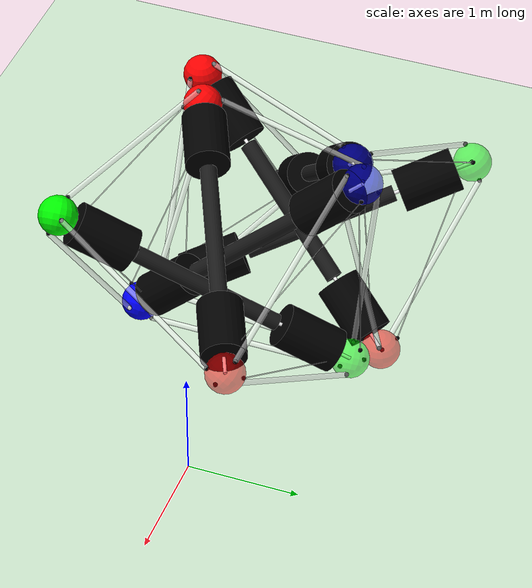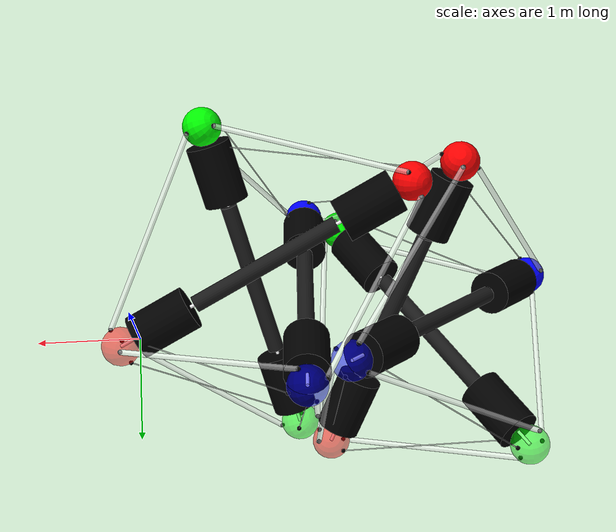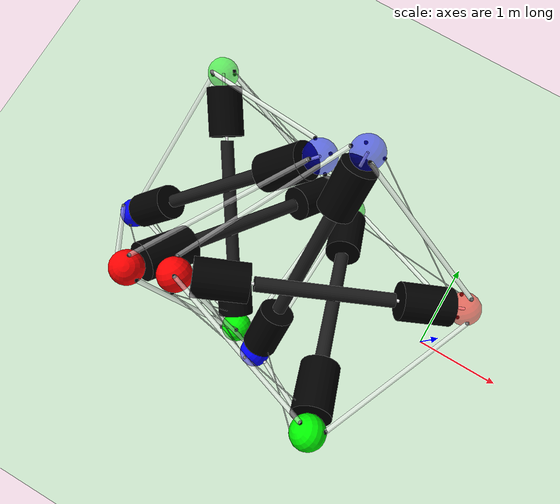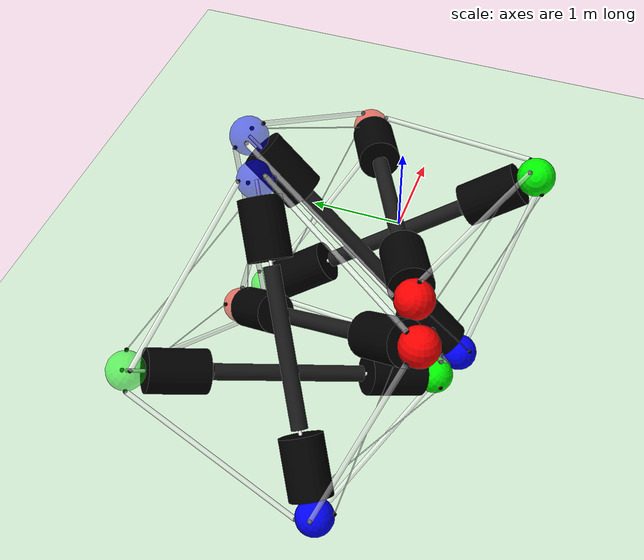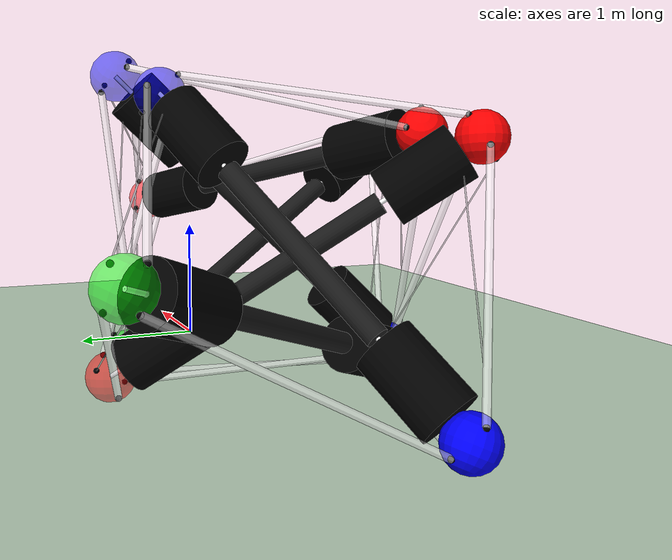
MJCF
<mujoco model="TT (v1.31)">
  <compiler angle="radian"/>

  <option timestep="0.01" cone="elliptic">
    <flag frictionloss="disable"/>
  </option>

  <visual>
    <global offwidth="1280" offheight="1280"/>
    <quality shadowsize="2048"/>
    <headlight ambient="0.4 0.4 0.4" diffuse="0.8 0.8 0.8" specular="0.1 0.1 0.1"/>
  </visual>

  <default>
    <geom size="0.014 0 0" condim="6" friction="1.2 0.0 0.0" solref="-5000 -50" rgba="0.75 0.75 0.75 1"/>
    <site size="0.02 0.005 0.005"/>

    <tendon stiffness="100000" damping="1000" springlength="1.5" width="0.005" rgba="1 1 1 0.5"/>
    <general ctrlrange="-100 0" dyntype="filter" gainprm="15000"/>
  </default>

  <asset>
    <texture type="skybox" colorspace="auto" name="skybox" builtin="gradient" mark="random" rgb1="0.4 0.6 0.8" rgb2="0 0 0" markrgb="1 1 1" width="800" height="4800"/>
    <texture type="2d" colorspace="auto" name="grid" builtin="checker" mark="edge" rgb1="0.1 0.2 0.3" rgb2="0.2 0.3 0.4" markrgb="0.2 0.3 0.4" width="300" height="300"/>
    <texture type="skybox" colorspace="auto" builtin="gradient" rgb1="1 1 1" rgb2="0 0 0" width="100" height="600"/>
    <texture type="cube" colorspace="auto" name="texgeom" builtin="flat" mark="cross" rgb1="0.8 0.6 0.4" rgb2="0.8 0.6 0.4" markrgb="1 1 1" width="127" height="762"/>
    <texture type="2d" colorspace="auto" name="texplane" builtin="checker" rgb1="0 0 0" rgb2="0.8 0.8 0.8" width="100" height="100"/>
    <material name="grid" texture="grid" texuniform="true"/>
    <material name="self" rgba="0.7 0.5 0.3 1"/>
    <material name="self_default" rgba="0.7 0.5 0.3 1"/>
    <material name="self_highlight" rgba="0 0.5 0.3 1"/>
    <material name="effector" rgba="0.7 0.4 0.2 1"/>
    <material name="effector_default" rgba="0.7 0.4 0.2 1"/>
    <material name="effector_highlight" rgba="0 0.5 0.3 1"/>
    <material name="decoration" rgba="0.3 0.5 0.7 1"/>
    <material name="eye" rgba="0 0.2 1 1"/>
    <material name="target" rgba="0.6 0.3 0.3 1"/>
    <material name="target_default" rgba="0.6 0.3 0.3 1"/>
    <material name="target_highlight" rgba="0.6 0.3 0.3 0.4"/>
    <material name="site" rgba="0.5 0.5 0.5 0.3"/>
    <material name="MatPlane" texture="texplane" texrepeat="30 30"/>
    <material name="geom" texture="texgeom" texuniform="true"/>
  </asset>

  <worldbody>
    <geom name="floor" size="40 40 1" type="plane" material="grid" rgba="0.8 0.9 0.8 1"/>
    <camera name="camera" pos="-1.707 -9.267 38.018" quat="0.992382 0.109445 -0.00620097 -0.0562269"/>
    <camera name="front" pos="10.257 -19.949 12.477" xyaxes="0.886 0.463 0.000 -0.225 0.430 0.875"/>
    <camera name="top" pos="0.392 -0.869 53.543" quat="0.999964 0.00849908 0 0"/>
    <light name="mylight" pos="0 0 6" dir="0 0 -1"/>
    <!-- World origin visual aids -->
    <site name="world_origin" pos="0 0 0" size="0.01" type="sphere" rgba="1 1 1 1"/>
    <geom name="x_axis" fromto="0 0 0 0.2 0 0" size="0.003" type="capsule" rgba="1 0 0 1" contype="0" conaffinity="0"/>
    <geom name="y_axis" fromto="0 0 0 0 0.2 0" size="0.003" type="capsule" rgba="0 1 0 1" contype="0" conaffinity="0"/>
    <geom name="z_axis" fromto="0 0 0 0 0 0.2" size="0.003" type="capsule" rgba="0 0 1 1" contype="0" conaffinity="0"/>
    <body name="t1_r01" pos="-1.26213974 -0.23564522  1.54703196" quat="0.76834435  0.33184372 -0.53958135 -0.09153509">
      <joint name="t1_move01" type="free"/>
      <geom name="t1_r01" size="0.0159 1.475" quat="1.02961e-09 -0.933251 0.359226 -9.46508e-10" type="cylinder" mass="6.5" rgba="1 1 1 1"/>
      <geom name="t1_s0" size="0.175" pos="3.69691e-09 1.83157e-09 -1.475" quat="0.815045 -0.454598 0.174983 0.313726" mass="15.1" rgba="1 0 0 0.5"/>
      <geom name="t1_s1" size="0.175" pos="-3.69691e-09 -1.83157e-09 1.475" quat="0.815045 -0.454598 0.174983 0.313726" mass="15.1" rgba="1 0 0 1"/>
      <geom name="t1_h01" size="0.075 0.715" quat="1.19879e-09 -0.933251 0.359226 3.09137e-09" type="cylinder" mass="90" rgba="0.1 0.1 0.1 1"/>
      <geom name="t1_b0" size="0.2 0.275" pos="-9.50917e-10 -1.3377e-09 -1.039" quat="2.96872e-09 -0.933251 0.359226 -2.79146e-09" type="cylinder" mass="58.1" rgba="0 0 0 1"/>
      <geom name="t1_b1" size="0.2 0.275" pos="9.50917e-10 1.3377e-09 1.039" quat="2.96872e-09 -0.933251 0.359226 -2.79146e-09" type="cylinder" mass="58.1" rgba="0 0 0 1"/>
      <site name="t1_s0" pos="3.69691e-09 1.83157e-09 -1.475" quat="0.815045 -0.454598 0.174983 0.313726" size="0.001" rgba="0 0 1 1"/>
      <site name="t1_s1" pos="-3.69691e-09 -1.83157e-09 1.475" quat="0.815045 -0.454598 0.174983 0.313726" size="0.001" rgba="0 0 1 1"/>
      <site name="t1_s_0_4" pos="0.0701671 0.160317 -1.475" quat="0.815045 -0.454598 0.174983 0.313726" rgba="0 0 0 1"/>
      <site name="t1_s_0_3" pos="0.160317 -0.0701671 -1.475" quat="0.815045 -0.454598 0.174983 0.313726" rgba="0 0 0 1"/>
      <site name="t1_s_0_2" pos="-0.0701671 -0.160317 -1.475" quat="0.815045 -0.454598 0.174983 0.313726" rgba="0 0 0 1"/>
      <site name="t1_s_0_b2" pos="-0.160317 0.0701671 -1.475" quat="0.815045 -0.454598 0.174983 0.313726" rgba="0 0 0 1"/>
      <site name="t1_s_b0_4" pos="0.0107106 0.174672 -1.25" quat="0.815045 -0.454598 0.174983 0.313726" rgba="0 0 0 1"/>
      <site name="t1_s_1_4" pos="-0.0783518 0.15648 1.475" quat="0.815045 -0.454598 0.174983 0.313726" rgba="0 0 0 1"/>
      <site name="t1_s_1_3" pos="0.15648 0.0783518 1.475" quat="0.815045 -0.454598 0.174983 0.313726" rgba="0 0 0 1"/>
      <site name="t1_s_1_b3" pos="0.0783518 -0.15648 1.475" quat="0.815045 -0.454598 0.174983 0.313726" rgba="0 0 0 1"/>
      <site name="t1_s_1_5" pos="-0.15648 -0.0783518 1.475" quat="0.815045 -0.454598 0.174983 0.313726" rgba="0 0 0 1"/>
      <site name="t1_s_b1_5" pos="-0.119125 -0.128196 1.25" quat="0.815045 -0.454598 0.174983 0.313726" rgba="0 0 0 1"/>
    </body>
    <body name="t1_r23" pos="-1.14161929 -0.26124791  1.02063315" quat="0.74468564  0.47369088 -0.1160248 0.45562978">
      <joint name="t1_move23" type="free"/>
      <geom name="t1_r23" size="0.0159 1.475" quat="-4.35483e-10 -0.967935 -0.251202 -5.83827e-10" type="cylinder" mass="6.5" rgba="1 1 1 1"/>
      <geom name="t1_s2" size="0.175" pos="1.98978e-09 -8.1084e-10 -1.475" quat="0.75122 -0.610382 -0.158409 -0.194959" mass="15.1" rgba="0 1 0 0.5"/>
      <geom name="t1_s3" size="0.175" pos="-1.98978e-09 8.1084e-10 1.475" quat="0.75122 -0.610382 -0.158409 -0.194959" mass="15.1" rgba="0 1 0 1"/>
      <geom name="t1_h23" size="0.075 0.715" quat="-1.43979e-09 -0.967935 -0.251202 2.94687e-09" type="cylinder" mass="90" rgba="0.1 0.1 0.1 1"/>
      <geom name="t1_b2" size="0.2 0.275" pos="-1.91631e-10 9.22312e-10 -1.039" quat="-2.39459e-09 -0.967935 -0.251202 -5.21693e-10" type="cylinder" mass="58.1" rgba="0 0 0 1"/>
      <geom name="t1_b3" size="0.2 0.275" pos="1.91631e-10 -9.22312e-10 1.039" quat="-2.39459e-09 -0.967935 -0.251202 -5.21693e-10" type="cylinder" mass="58.1" rgba="0 0 0 1"/>
      <site name="t1_s2" pos="1.98978e-09 -8.1084e-10 -1.475" quat="0.75122 -0.610382 -0.158409 -0.194959" size="0.001" rgba="0 1 0 1"/>
      <site name="t1_s3" pos="-1.98978e-09 8.1084e-10 1.475" quat="0.75122 -0.610382 -0.158409 -0.194959" size="0.001" rgba="0 1 0 1"/>
      <site name="t1_s_2_4" pos="-0.0850506 0.152942 -1.475" quat="0.75122 -0.610382 -0.158409 -0.194959" rgba="0 0 0 1"/>
      <site name="t1_s_2_b4" pos="0.152942 0.0850506 -1.475" quat="0.75122 -0.610382 -0.158409 -0.194959" rgba="0 0 0 1"/>
      <site name="t1_s_2_0" pos="0.0850506 -0.152942 -1.475" quat="0.75122 -0.610382 -0.158409 -0.194959" rgba="0 0 0 1"/>
      <site name="t1_s_b2_0" pos="0.123401 -0.124085 -1.25" quat="0.75122 -0.610382 -0.158409 -0.194959" rgba="0 0 0 1"/>
      <site name="t1_s_2_5" pos="-0.152942 -0.0850506 -1.475" quat="0.75122 -0.610382 -0.158409 -0.194959" rgba="0 0 0 1"/>
      <site name="t1_s_3_1" pos="0.0472796 0.168492 1.475" quat="0.75122 -0.610382 -0.158409 -0.194959" rgba="0 0 0 1"/>
      <site name="t1_s_b3_1" pos="-0.0343533 0.171595 1.25" quat="0.75122 -0.610382 -0.158409 -0.194959" rgba="0 0 0 1"/>
      <site name="t1_s_3_0" pos="0.168492 -0.0472796 1.475" quat="0.75122 -0.610382 -0.158409 -0.194959" rgba="0 0 0 1"/>
      <site name="t1_s_3_5" pos="-0.0472796 -0.168492 1.475" quat="0.75122 -0.610382 -0.158409 -0.194959" rgba="0 0 0 1"/>
      <site name="t1_s_3_b5" pos="-0.168492 0.0472796 1.475" quat="0.75122 -0.610382 -0.158409 -0.194959" rgba="0 0 0 1"/>
    </body>
    <body name="t1_r45" pos="-1.61019681 -0.05498509  1.20163103" quat="0.15651032  0.32311333 -0.86239838 0.35689119">
      <joint name="t1_move45" type="free"/>
      <geom name="t1_r45" size="0.0159 1.475" quat="1.95914e-11 -0.622854 0.782338 -9.94874e-10" type="cylinder" mass="6.5" rgba="1 1 1 1"/>
      <geom name="t1_s4" size="0.175" pos="1.87322e-09 -2.26007e-09 -1.475" quat="0.464921 -0.532774 0.669192 -0.228434" mass="15.1" rgba="0 0 1 0.5"/>
      <geom name="t1_s5" size="0.175" pos="-1.87322e-09 2.26007e-09 1.475" quat="0.464921 -0.532774 0.669192 -0.228434" mass="15.1" rgba="0 0 1 1"/>
      <geom name="t1_h45" size="0.075 0.715" quat="4.74452e-10 -0.622854 0.782338 -2.08275e-09" type="cylinder" mass="90" rgba="0.1 0.1 0.1 1"/>
      <geom name="t1_b4" size="0.2 0.275" pos="-1.03465e-09 1.12983e-09 -1.039" quat="-1.25256e-09 -0.622854 0.782338 5.36179e-09" type="cylinder" mass="58.1" rgba="0 0 0 1"/>
      <geom name="t1_b5" size="0.2 0.275" pos="1.03465e-09 -1.12983e-09 1.039" quat="-1.25256e-09 -0.622854 0.782338 5.36179e-09" type="cylinder" mass="58.1" rgba="0 0 0 1"/>
      <site name="t1_s4" pos="1.87322e-09 -2.26007e-09 -1.475" quat="0.464921 -0.532774 0.669192 -0.228434" size="0.001" rgba="1 0 0 1"/>
      <site name="t1_s5" pos="-1.87322e-09 2.26007e-09 1.475" quat="0.464921 -0.532774 0.669192 -0.228434" size="0.001" rgba="1 0 0 1"/>
      <site name="t1_s_4_1" pos="0.166088 0.0551331 -1.475" quat="0.464921 -0.532774 0.669192 -0.228434" rgba="0 0 0 1"/>
      <site name="t1_s_4_0" pos="0.0551331 -0.166088 -1.475" quat="0.464921 -0.532774 0.669192 -0.228434" rgba="0 0 0 1"/>
      <site name="t1_s_4_2" pos="-0.0551331 0.166088 -1.475" quat="0.464921 -0.532774 0.669192 -0.228434" rgba="0 0 0 1"/>
      <site name="t1_s_b4_2" pos="-0.0910059 0.149476 -1.25" quat="0.464921 -0.532774 0.669192 -0.228434" rgba="0 0 0 1"/>
      <site name="t1_s_4_b0" pos="-0.166088 -0.0551331 -1.475" quat="0.464921 -0.532774 0.669192 -0.228434" rgba="0 0 0 1"/>
      <site name="t1_s_5_1" pos="0.0855044 0.152689 1.475" quat="0.464921 -0.532774 0.669192 -0.228434" rgba="0 0 0 1"/>
      <site name="t1_s_5_b1" pos="0.152689 -0.0855044 1.475" quat="0.464921 -0.532774 0.669192 -0.228434" rgba="0 0 0 1"/>
      <site name="t1_s_5_3" pos="-0.0855044 -0.152689 1.475" quat="0.464921 -0.532774 0.669192 -0.228434" rgba="1 1 1 1"/>
      <site name="t1_s_b5_3" pos="-0.022702 -0.173521 1.25" quat="0.464921 -0.532774 0.669192 -0.228434" rgba="0 0 0 1"/>
      <site name="t1_s_5_2" pos="-0.152689 0.0855044 1.475" quat="0.464921 -0.532774 0.669192 -0.228434" rgba="0 0 0 1"/>
    </body>
    <body name="t2_r01" pos="-2.41028405  0.0558339   0.99225105" quat="0.83368351  0.46350748 -0.08384928 -0.28827403">
      <joint name="t2_move01" type="free"/>
      <geom name="t2_r01" size="0.0159 1.475" quat="1.02961e-09 -0.933251 0.359226 -9.46508e-10" type="cylinder" mass="6.5" rgba="1 1 1 1"/>
      <geom name="t2_s0" size="0.175" pos="3.69691e-09 1.83157e-09 -1.475" quat="0.815045 -0.454598 0.174983 0.313726" mass="15.1" rgba="1 0 0 0.5"/>
      <geom name="t2_s1" size="0.175" pos="-3.69691e-09 -1.83157e-09 1.475" quat="0.815045 -0.454598 0.174983 0.313726" mass="15.1" rgba="1 0 0 1"/>
      <geom name="t2_h01" size="0.075 0.715" quat="1.19879e-09 -0.933251 0.359226 3.09137e-09" type="cylinder" mass="90" rgba="0.1 0.1 0.1 1"/>
      <geom name="t2_b0" size="0.2 0.275" pos="-9.50917e-10 -1.3377e-09 -1.039" quat="2.96872e-09 -0.933251 0.359226 -2.79146e-09" type="cylinder" mass="58.1" rgba="0 0 0 1"/>
      <geom name="t2_b1" size="0.2 0.275" pos="9.50917e-10 1.3377e-09 1.039" quat="2.96872e-09 -0.933251 0.359226 -2.79146e-09" type="cylinder" mass="58.1" rgba="0 0 0 1"/>
      <site name="t2_s0" pos="3.69691e-09 1.83157e-09 -1.475" quat="0.815045 -0.454598 0.174983 0.313726" size="0.001" rgba="0 0 1 1"/>
      <site name="t2_s1" pos="-3.69691e-09 -1.83157e-09 1.475" quat="0.815045 -0.454598 0.174983 0.313726" size="0.001" rgba="0 0 1 1"/>
      <site name="t2_s_0_4" pos="0.0701671 0.160317 -1.475" quat="0.815045 -0.454598 0.174983 0.313726" rgba="0 0 0 1"/>
      <site name="t2_s_0_3" pos="0.160317 -0.0701671 -1.475" quat="0.815045 -0.454598 0.174983 0.313726" rgba="0 0 0 1"/>
      <site name="t2_s_0_2" pos="-0.0701671 -0.160317 -1.475" quat="0.815045 -0.454598 0.174983 0.313726" rgba="0 0 0 1"/>
      <site name="t2_s_0_b2" pos="-0.160317 0.0701671 -1.475" quat="0.815045 -0.454598 0.174983 0.313726" rgba="0 0 0 1"/>
      <site name="t2_s_b0_4" pos="0.0107106 0.174672 -1.25" quat="0.815045 -0.454598 0.174983 0.313726" rgba="0 0 0 1"/>
      <site name="t2_s_1_4" pos="-0.0783518 0.15648 1.475" quat="0.815045 -0.454598 0.174983 0.313726" rgba="0 0 0 1"/>
      <site name="t2_s_1_3" pos="0.15648 0.0783518 1.475" quat="0.815045 -0.454598 0.174983 0.313726" rgba="0 0 0 1"/>
      <site name="t2_s_1_b3" pos="0.0783518 -0.15648 1.475" quat="0.815045 -0.454598 0.174983 0.313726" rgba="0 0 0 1"/>
      <site name="t2_s_1_5" pos="-0.15648 -0.0783518 1.475" quat="0.815045 -0.454598 0.174983 0.313726" rgba="0 0 0 1"/>
      <site name="t2_s_b1_5" pos="-0.119125 -0.128196 1.25" quat="0.815045 -0.454598 0.174983 0.313726" rgba="0 0 0 1"/>
    </body>
    <body name="t2_r23" pos="-2.7633816   0.2147738   0.62967293" quat="0.54580568  0.79490038  0.14940125 0.21888084">
      <joint name="t2_move23" type="free"/>
      <geom name="t2_r23" size="0.0159 1.475" quat="-4.35483e-10 -0.967935 -0.251202 -5.83827e-10" type="cylinder" mass="6.5" rgba="1 1 1 1"/>
      <geom name="t2_s2" size="0.175" pos="1.98978e-09 -8.1084e-10 -1.475" quat="0.75122 -0.610382 -0.158409 -0.194959" mass="15.1" rgba="0 1 0 0.5"/>
      <geom name="t2_s3" size="0.175" pos="-1.98978e-09 8.1084e-10 1.475" quat="0.75122 -0.610382 -0.158409 -0.194959" mass="15.1" rgba="0 1 0 1"/>
      <geom name="t2_h23" size="0.075 0.715" quat="-1.43979e-09 -0.967935 -0.251202 2.94687e-09" type="cylinder" mass="90" rgba="0.1 0.1 0.1 1"/>
      <geom name="t2_b2" size="0.2 0.275" pos="-1.91631e-10 9.22312e-10 -1.039" quat="-2.39459e-09 -0.967935 -0.251202 -5.21693e-10" type="cylinder" mass="58.1" rgba="0 0 0 1"/>
      <geom name="t2_b3" size="0.2 0.275" pos="1.91631e-10 -9.22312e-10 1.039" quat="-2.39459e-09 -0.967935 -0.251202 -5.21693e-10" type="cylinder" mass="58.1" rgba="0 0 0 1"/>
      <site name="t2_s2" pos="1.98978e-09 -8.1084e-10 -1.475" quat="0.75122 -0.610382 -0.158409 -0.194959" size="0.001" rgba="0 1 0 1"/>
      <site name="t2_s3" pos="-1.98978e-09 8.1084e-10 1.475" quat="0.75122 -0.610382 -0.158409 -0.194959" size="0.001" rgba="0 1 0 1"/>
      <site name="t2_s_2_4" pos="-0.0850506 0.152942 -1.475" quat="0.75122 -0.610382 -0.158409 -0.194959" rgba="0 0 0 1"/>
      <site name="t2_s_2_b4" pos="0.152942 0.0850506 -1.475" quat="0.75122 -0.610382 -0.158409 -0.194959" rgba="0 0 0 1"/>
      <site name="t2_s_2_0" pos="0.0850506 -0.152942 -1.475" quat="0.75122 -0.610382 -0.158409 -0.194959" rgba="0 0 0 1"/>
      <site name="t2_s_b2_0" pos="0.123401 -0.124085 -1.25" quat="0.75122 -0.610382 -0.158409 -0.194959" rgba="0 0 0 1"/>
      <site name="t2_s_2_5" pos="-0.152942 -0.0850506 -1.475" quat="0.75122 -0.610382 -0.158409 -0.194959" rgba="0 0 0 1"/>
      <site name="t2_s_3_1" pos="0.0472796 0.168492 1.475" quat="0.75122 -0.610382 -0.158409 -0.194959" rgba="0 0 0 1"/>
      <site name="t2_s_b3_1" pos="-0.0343533 0.171595 1.25" quat="0.75122 -0.610382 -0.158409 -0.194959" rgba="0 0 0 1"/>
      <site name="t2_s_3_0" pos="0.168492 -0.0472796 1.475" quat="0.75122 -0.610382 -0.158409 -0.194959" rgba="0 0 0 1"/>
      <site name="t2_s_3_5" pos="-0.0472796 -0.168492 1.475" quat="0.75122 -0.610382 -0.158409 -0.194959" rgba="0 0 0 1"/>
      <site name="t2_s_3_b5" pos="-0.168492 0.0472796 1.475" quat="0.75122 -0.610382 -0.158409 -0.194959" rgba="0 0 0 1"/>
    </body>
    <body name="t2_r45" pos="-2.87473964  0.18788194  1.13645211" quat="0.41615165  0.53221606 -0.73683846 -0.02515885">
      <joint name="t2_move45" type="free"/>
      <geom name="t2_r45" size="0.0159 1.475" quat="1.95914e-11 -0.622854 0.782338 -9.94874e-10" type="cylinder" mass="6.5" rgba="1 1 1 1"/>
      <geom name="t2_s4" size="0.175" pos="1.87322e-09 -2.26007e-09 -1.475" quat="0.464921 -0.532774 0.669192 -0.228434" mass="15.1" rgba="0 0 1 0.5"/>
      <geom name="t2_s5" size="0.175" pos="-1.87322e-09 2.26007e-09 1.475" quat="0.464921 -0.532774 0.669192 -0.228434" mass="15.1" rgba="0 0 1 1"/>
      <geom name="t2_h45" size="0.075 0.715" quat="4.74452e-10 -0.622854 0.782338 -2.08275e-09" type="cylinder" mass="90" rgba="0.1 0.1 0.1 1"/>
      <geom name="t2_b4" size="0.2 0.275" pos="-1.03465e-09 1.12983e-09 -1.039" quat="-1.25256e-09 -0.622854 0.782338 5.36179e-09" type="cylinder" mass="58.1" rgba="0 0 0 1"/>
      <geom name="t2_b5" size="0.2 0.275" pos="1.03465e-09 -1.12983e-09 1.039" quat="-1.25256e-09 -0.622854 0.782338 5.36179e-09" type="cylinder" mass="58.1" rgba="0 0 0 1"/>
      <site name="t2_s4" pos="1.87322e-09 -2.26007e-09 -1.475" quat="0.464921 -0.532774 0.669192 -0.228434" size="0.001" rgba="1 0 0 1"/>
      <site name="t2_s5" pos="-1.87322e-09 2.26007e-09 1.475" quat="0.464921 -0.532774 0.669192 -0.228434" size="0.001" rgba="1 0 0 1"/>
      <site name="t2_s_4_1" pos="0.166088 0.0551331 -1.475" quat="0.464921 -0.532774 0.669192 -0.228434" rgba="0 0 0 1"/>
      <site name="t2_s_4_0" pos="0.0551331 -0.166088 -1.475" quat="0.464921 -0.532774 0.669192 -0.228434" rgba="0 0 0 1"/>
      <site name="t2_s_4_2" pos="-0.0551331 0.166088 -1.475" quat="0.464921 -0.532774 0.669192 -0.228434" rgba="0 0 0 1"/>
      <site name="t2_s_b4_2" pos="-0.0910059 0.149476 -1.25" quat="0.464921 -0.532774 0.669192 -0.228434" rgba="0 0 0 1"/>
      <site name="t2_s_4_b0" pos="-0.166088 -0.0551331 -1.475" quat="0.464921 -0.532774 0.669192 -0.228434" rgba="0 0 0 1"/>
      <site name="t2_s_5_1" pos="0.0855044 0.152689 1.475" quat="0.464921 -0.532774 0.669192 -0.228434" rgba="0 0 0 1"/>
      <site name="t2_s_5_b1" pos="0.152689 -0.0855044 1.475" quat="0.464921 -0.532774 0.669192 -0.228434" rgba="0 0 0 1"/>
      <site name="t2_s_5_3" pos="-0.0855044 -0.152689 1.475" quat="0.464921 -0.532774 0.669192 -0.228434" rgba="1 1 1 1"/>
      <site name="t2_s_b5_3" pos="-0.022702 -0.173521 1.25" quat="0.464921 -0.532774 0.669192 -0.228434" rgba="0 0 0 1"/>
      <site name="t2_s_5_2" pos="-0.152689 0.0855044 1.475" quat="0.464921 -0.532774 0.669192 -0.228434" rgba="0 0 0 1"/>
    </body>
  </worldbody>

  <tendon>
    <spatial name="t1_td_0" rgba="0.6 0.6 0.6 0.5">
      <site site="t1_s_3_b5"/>
      <site site="t1_s_b5_3"/>
    </spatial>
    <spatial name="t1_td_1" rgba="0.6 0.6 0.6 0.5">
      <site site="t1_s_1_b3"/>
      <site site="t1_s_b3_1"/>
    </spatial>
    <spatial name="t1_td_2" rgba="0.6 0.6 0.6 0.5">
      <site site="t1_s_5_b1"/>
      <site site="t1_s_b1_5"/>
    </spatial>
    <spatial name="t1_td_3" rgba="0.6 0.6 0.6 0.5">
      <site site="t1_s_0_b2"/>
      <site site="t1_s_b2_0"/>
    </spatial>
    <spatial name="t1_td_4" rgba="0.6 0.6 0.6 0.5">
      <site site="t1_s_4_b0"/>
      <site site="t1_s_b0_4"/>
    </spatial>
    <spatial name="t1_td_5" rgba="0.6 0.6 0.6 0.5">
      <site site="t1_s_2_b4"/>
      <site site="t1_s_b4_2"/>
    </spatial>
    <spatial name="t1_td_6" stiffness="1000" springlength="0.65" width="0.025">
      <site site="t1_s_3_5"/>
      <site site="t1_s_5_3"/>
    </spatial>
    <spatial name="t1_td_7" stiffness="1000" springlength="0.65" width="0.025">
      <site site="t1_s_1_3"/>
      <site site="t1_s_3_1"/>
    </spatial>
    <spatial name="t1_td_8" stiffness="1000" springlength="0.65" width="0.025">
      <site site="t1_s_1_5"/>
      <site site="t1_s_5_1"/>
    </spatial>
    <spatial name="t1_td_9" stiffness="1000" springlength="0.65" width="0.025">
      <site site="t1_s_0_2"/>
      <site site="t1_s_2_0"/>
    </spatial>
    <spatial name="t1_td_10" stiffness="1000" springlength="0.65" width="0.025">
      <site site="t1_s_0_4"/>
      <site site="t1_s_4_0"/>
    </spatial>
    <spatial name="t1_td_11" stiffness="1000" springlength="0.65" width="0.025">
      <site site="t1_s_2_4"/>
      <site site="t1_s_4_2"/>
    </spatial>
    <spatial name="t1_td_12" stiffness="20000" springlength="1.3" width="0.025">
      <site site="t1_s_2_5"/>
      <site site="t1_s_5_2"/>
    </spatial>
    <spatial name="t1_td_13" stiffness="20000" springlength="1.3" width="0.025">
      <site site="t1_s_0_3"/>
      <site site="t1_s_3_0"/>
    </spatial>
    <spatial name="t1_td_14" stiffness="20000" springlength="1.3" width="0.025">
      <site site="t1_s_1_4"/>
      <site site="t1_s_4_1"/>
    </spatial>
    <spatial name="t2_td_0" rgba="0.6 0.6 0.6 0.5">
      <site site="t2_s_3_b5"/>
      <site site="t2_s_b5_3"/>
    </spatial>
    <spatial name="t2_td_1" rgba="0.6 0.6 0.6 0.5">
      <site site="t2_s_1_b3"/>
      <site site="t2_s_b3_1"/>
    </spatial>
    <spatial name="t2_td_2" rgba="0.6 0.6 0.6 0.5">
      <site site="t2_s_5_b1"/>
      <site site="t2_s_b1_5"/>
    </spatial>
    <spatial name="t2_td_3" rgba="0.6 0.6 0.6 0.5">
      <site site="t2_s_0_b2"/>
      <site site="t2_s_b2_0"/>
    </spatial>
    <spatial name="t2_td_4" rgba="0.6 0.6 0.6 0.5">
      <site site="t2_s_4_b0"/>
      <site site="t2_s_b0_4"/>
    </spatial>
    <spatial name="t2_td_5" rgba="0.6 0.6 0.6 0.5">
      <site site="t2_s_2_b4"/>
      <site site="t2_s_b4_2"/>
    </spatial>
    <spatial name="t2_td_6" stiffness="1000" springlength="0.65" width="0.025">
      <site site="t2_s_3_5"/>
      <site site="t2_s_5_3"/>
    </spatial>
    <spatial name="t2_td_7" stiffness="1000" springlength="0.65" width="0.025">
      <site site="t2_s_1_3"/>
      <site site="t2_s_3_1"/>
    </spatial>
    <spatial name="t2_td_8" stiffness="1000" springlength="0.65" width="0.025">
      <site site="t2_s_1_5"/>
      <site site="t2_s_5_1"/>
    </spatial>
    <spatial name="t2_td_9" stiffness="1000" springlength="0.65" width="0.025">
      <site site="t2_s_0_2"/>
      <site site="t2_s_2_0"/>
    </spatial>
    <spatial name="t2_td_10" stiffness="1000" springlength="0.65" width="0.025">
      <site site="t2_s_0_4"/>
      <site site="t2_s_4_0"/>
    </spatial>
    <spatial name="t2_td_11" stiffness="1000" springlength="0.65" width="0.025">
      <site site="t2_s_2_4"/>
      <site site="t2_s_4_2"/>
    </spatial>
    <spatial name="t2_td_12" stiffness="20000" springlength="1.3" width="0.025">
      <site site="t2_s_2_5"/>
      <site site="t2_s_5_2"/>
    </spatial>
    <spatial name="t2_td_13" stiffness="20000" springlength="1.3" width="0.025">
      <site site="t2_s_0_3"/>
      <site site="t2_s_3_0"/>
    </spatial>
    <spatial name="t2_td_14" stiffness="20000" springlength="1.3" width="0.025">
      <site site="t2_s_1_4"/>
      <site site="t2_s_4_1"/>
    </spatial>

<!--    Used to quickly find potential attachment points-->
  </tendon>

  <equality>
    <weld body1="t1_r23" body2="t2_r01" anchor="0 0 0"/>
    <weld body1="t1_r01" body2="t2_r01" anchor="0 0 0"/>
    <weld body1="t1_r45" body2="t2_r23" anchor="0 0 0"/>
    <weld body1="t1_r45" body2="t2_r45" anchor="0 0 0"/>
  </equality>

  <sensor>
    <framepos objtype="site" objname="t1_s0" name="pos_t1_s0"/>
    <framepos objtype="site" objname="t1_s1" name="pos_t1_s1"/>
    <framepos objtype="site" objname="t1_s2" name="pos_t1_s2"/>
    <framepos objtype="site" objname="t1_s3" name="pos_t1_s3"/>
    <framepos objtype="site" objname="t1_s4" name="pos_t1_s4"/>
    <framepos objtype="site" objname="t1_s5" name="pos_t1_s5"/>
    <framepos objtype="site" objname="t1_s_0_4" name="pos_t1_s_0_4"/>
    <framepos objtype="site" objname="t1_s_0_3" name="pos_t1_s_0_3"/>
    <framepos objtype="site" objname="t1_s_0_2" name="pos_t1_s_0_2"/>
    <framepos objtype="site" objname="t1_s_b0_4" name="pos_t1_s_b0_4"/>
    <framepos objtype="site" objname="t1_s_0_b2" name="pos_t1_s_0_b2"/>
    <framepos objtype="site" objname="t1_s_1_4" name="pos_t1_s_1_4"/>
    <framepos objtype="site" objname="t1_s_1_3" name="pos_t1_s_1_3"/>
    <framepos objtype="site" objname="t1_s_1_5" name="pos_t1_s_1_5"/>
    <framepos objtype="site" objname="t1_s_1_b3" name="pos_t1_s_1_b3"/>
    <framepos objtype="site" objname="t1_s_b1_5" name="pos_t1_s_b1_5"/>
    <framepos objtype="site" objname="t1_s_2_4" name="pos_t1_s_2_4"/>
    <framepos objtype="site" objname="t1_s_2_0" name="pos_t1_s_2_0"/>
    <framepos objtype="site" objname="t1_s_2_5" name="pos_t1_s_2_5"/>
    <framepos objtype="site" objname="t1_s_b2_0" name="pos_t1_s_b2_0"/>
    <framepos objtype="site" objname="t1_s_2_b4" name="pos_t1_s_2_b4"/>
    <framepos objtype="site" objname="t1_s_3_1" name="pos_t1_s_3_1"/>
    <framepos objtype="site" objname="t1_s_3_0" name="pos_t1_s_3_0"/>
    <framepos objtype="site" objname="t1_s_3_5" name="pos_t1_s_3_5"/>
    <framepos objtype="site" objname="t1_s_3_b5" name="pos_t1_s_3_b5"/>
    <framepos objtype="site" objname="t1_s_b3_1" name="pos_t1_s_b3_1"/>
    <framepos objtype="site" objname="t1_s_4_1" name="pos_t1_s_4_1"/>
    <framepos objtype="site" objname="t1_s_4_0" name="pos_t1_s_4_0"/>
    <framepos objtype="site" objname="t1_s_4_2" name="pos_t1_s_4_2"/>
    <framepos objtype="site" objname="t1_s_4_b0" name="pos_t1_s_4_b0"/>
    <framepos objtype="site" objname="t1_s_b4_2" name="pos_t1_s_b4_2"/>
    <framepos objtype="site" objname="t1_s_5_1" name="pos_t1_s_5_1"/>
    <framepos objtype="site" objname="t1_s_5_3" name="pos_t1_s_5_3"/>
    <framepos objtype="site" objname="t1_s_5_2" name="pos_t1_s_5_2"/>
    <framepos objtype="site" objname="t1_s_5_b1" name="pos_t1_s_5_b1"/>
    <framepos objtype="site" objname="t1_s_b5_3" name="pos_t1_s_b5_3"/>
    <framelinvel objtype="site" objname="t1_s0" name="linvel_t1_s0"/>
    <framelinvel objtype="site" objname="t1_s1" name="linvel_t1_s1"/>
    <framelinvel objtype="site" objname="t1_s2" name="linvel_t1_s2"/>
    <framelinvel objtype="site" objname="t1_s3" name="linvel_t1_s3"/>
    <framelinvel objtype="site" objname="t1_s4" name="linvel_t1_s4"/>
    <framelinvel objtype="site" objname="t1_s5" name="linvel_t1_s5"/>
    <framelinvel objtype="site" objname="t1_s_0_4" name="linvel_t1_s_0_4"/>
    <framelinvel objtype="site" objname="t1_s_0_3" name="linvel_t1_s_0_3"/>
    <framelinvel objtype="site" objname="t1_s_0_2" name="linvel_t1_s_0_2"/>
    <framelinvel objtype="site" objname="t1_s_1_4" name="linvel_t1_s_1_4"/>
    <framelinvel objtype="site" objname="t1_s_1_3" name="linvel_t1_s_1_3"/>
    <framelinvel objtype="site" objname="t1_s_1_5" name="linvel_t1_s_1_5"/>
    <framelinvel objtype="site" objname="t1_s_2_4" name="linvel_t1_s_2_4"/>
    <framelinvel objtype="site" objname="t1_s_2_0" name="linvel_t1_s_2_0"/>
    <framelinvel objtype="site" objname="t1_s_2_5" name="linvel_t1_s_2_5"/>
    <framelinvel objtype="site" objname="t1_s_3_1" name="linvel_t1_s_3_1"/>
    <framelinvel objtype="site" objname="t1_s_3_0" name="linvel_t1_s_3_0"/>
    <framelinvel objtype="site" objname="t1_s_3_5" name="linvel_t1_s_3_5"/>
    <framelinvel objtype="site" objname="t1_s_4_1" name="linvel_t1_s_4_1"/>
    <framelinvel objtype="site" objname="t1_s_4_0" name="linvel_t1_s_4_0"/>
    <framelinvel objtype="site" objname="t1_s_4_2" name="linvel_t1_s_4_2"/>
    <framelinvel objtype="site" objname="t1_s_5_1" name="linvel_t1_s_5_1"/>
    <framelinvel objtype="site" objname="t1_s_5_3" name="linvel_t1_s_5_3"/>
    <framelinvel objtype="site" objname="t1_s_5_2" name="linvel_t1_s_5_2"/>
    <framelinacc objtype="site" objname="t1_s0" name="linacc_t1_s0"/>
    <framelinacc objtype="site" objname="t1_s1" name="linacc_t1_s1"/>
    <framelinacc objtype="site" objname="t1_s2" name="linacc_t1_s2"/>
    <framelinacc objtype="site" objname="t1_s3" name="linacc_t1_s3"/>
    <framelinacc objtype="site" objname="t1_s4" name="linacc_t1_s4"/>
    <framelinacc objtype="site" objname="t1_s5" name="linacc_t1_s5"/>
    <framelinacc objtype="site" objname="t1_s_0_4" name="linacc_t1_s_0_4"/>
    <framelinacc objtype="site" objname="t1_s_0_3" name="linacc_t1_s_0_3"/>
    <framelinacc objtype="site" objname="t1_s_0_2" name="linacc_t1_s_0_2"/>
    <framelinacc objtype="site" objname="t1_s_1_4" name="linacc_t1_s_1_4"/>
    <framelinacc objtype="site" objname="t1_s_1_3" name="linacc_t1_s_1_3"/>
    <framelinacc objtype="site" objname="t1_s_1_5" name="linacc_t1_s_1_5"/>
    <framelinacc objtype="site" objname="t1_s_2_4" name="linacc_t1_s_2_4"/>
    <framelinacc objtype="site" objname="t1_s_2_0" name="linacc_t1_s_2_0"/>
    <framelinacc objtype="site" objname="t1_s_2_5" name="linacc_t1_s_2_5"/>
    <framelinacc objtype="site" objname="t1_s_3_1" name="linacc_t1_s_3_1"/>
    <framelinacc objtype="site" objname="t1_s_3_0" name="linacc_t1_s_3_0"/>
    <framelinacc objtype="site" objname="t1_s_3_5" name="linacc_t1_s_3_5"/>
    <framelinacc objtype="site" objname="t1_s_4_1" name="linacc_t1_s_4_1"/>
    <framelinacc objtype="site" objname="t1_s_4_0" name="linacc_t1_s_4_0"/>
    <framelinacc objtype="site" objname="t1_s_4_2" name="linacc_t1_s_4_2"/>
    <framelinacc objtype="site" objname="t1_s_5_1" name="linacc_t1_s_5_1"/>
    <framelinacc objtype="site" objname="t1_s_5_3" name="linacc_t1_s_5_3"/>
    <framelinacc objtype="site" objname="t1_s_5_2" name="linacc_t1_s_5_2"/>
    <framelinacc objtype="geom" objname="t1_r01" name="linacc_t1_r01"/>
    <frameangacc objtype="geom" objname="t1_r01" name="angacc_t1_r01"/>
    <framepos objtype="geom" objname="t1_r01" name="pos_t1_r01"/>
    <framelinvel objtype="geom" objname="t1_r01" name="linvel_t1_r01"/>
    <frameangvel objtype="geom" objname="t1_r01" name="angvel_t1_r01"/>
    <framequat objtype="geom" objname="t1_r01" name="quat_t1_r01"/>
    <framelinacc objtype="geom" objname="t1_r23" name="linacc_t1_r23"/>
    <frameangacc objtype="geom" objname="t1_r23" name="angacc_t1_r23"/>
    <framepos objtype="geom" objname="t1_r23" name="pos_t1_r23"/>
    <framelinvel objtype="geom" objname="t1_r23" name="linvel_t1_r23"/>
    <frameangvel objtype="geom" objname="t1_r23" name="angvel_t1_r23"/>
    <framequat objtype="geom" objname="t1_r23" name="quat_t1_r23"/>
    <framelinacc objtype="geom" objname="t1_r45" name="linacc_t1_r45"/>
    <frameangacc objtype="geom" objname="t1_r45" name="angacc_t1_r45"/>
    <framepos objtype="geom" objname="t1_r45" name="pos_t1_r45"/>
    <framelinvel objtype="geom" objname="t1_r45" name="linvel_t1_r45"/>
    <frameangvel objtype="geom" objname="t1_r45" name="angvel_t1_r45"/>
    <framequat objtype="geom" objname="t1_r45" name="quat_t1_r45"/>
    <framepos objtype="site" objname="t2_s0" name="pos_t2_s0"/>
    <framepos objtype="site" objname="t2_s1" name="pos_t2_s1"/>
    <framepos objtype="site" objname="t2_s2" name="pos_t2_s2"/>
    <framepos objtype="site" objname="t2_s3" name="pos_t2_s3"/>
    <framepos objtype="site" objname="t2_s4" name="pos_t2_s4"/>
    <framepos objtype="site" objname="t2_s5" name="pos_t2_s5"/>
    <framepos objtype="site" objname="t2_s_0_4" name="pos_t2_s_0_4"/>
    <framepos objtype="site" objname="t2_s_0_3" name="pos_t2_s_0_3"/>
    <framepos objtype="site" objname="t2_s_0_2" name="pos_t2_s_0_2"/>
    <framepos objtype="site" objname="t2_s_b0_4" name="pos_t2_s_b0_4"/>
    <framepos objtype="site" objname="t2_s_0_b2" name="pos_t2_s_0_b2"/>
    <framepos objtype="site" objname="t2_s_1_4" name="pos_t2_s_1_4"/>
    <framepos objtype="site" objname="t2_s_1_3" name="pos_t2_s_1_3"/>
    <framepos objtype="site" objname="t2_s_1_5" name="pos_t2_s_1_5"/>
    <framepos objtype="site" objname="t2_s_1_b3" name="pos_t2_s_1_b3"/>
    <framepos objtype="site" objname="t2_s_b1_5" name="pos_t2_s_b1_5"/>
    <framepos objtype="site" objname="t2_s_2_4" name="pos_t2_s_2_4"/>
    <framepos objtype="site" objname="t2_s_2_0" name="pos_t2_s_2_0"/>
    <framepos objtype="site" objname="t2_s_2_5" name="pos_t2_s_2_5"/>
    <framepos objtype="site" objname="t2_s_b2_0" name="pos_t2_s_b2_0"/>
    <framepos objtype="site" objname="t2_s_2_b4" name="pos_t2_s_2_b4"/>
    <framepos objtype="site" objname="t2_s_3_1" name="pos_t2_s_3_1"/>
    <framepos objtype="site" objname="t2_s_3_0" name="pos_t2_s_3_0"/>
    <framepos objtype="site" objname="t2_s_3_5" name="pos_t2_s_3_5"/>
    <framepos objtype="site" objname="t2_s_3_b5" name="pos_t2_s_3_b5"/>
    <framepos objtype="site" objname="t2_s_b3_1" name="pos_t2_s_b3_1"/>
    <framepos objtype="site" objname="t2_s_4_1" name="pos_t2_s_4_1"/>
    <framepos objtype="site" objname="t2_s_4_0" name="pos_t2_s_4_0"/>
    <framepos objtype="site" objname="t2_s_4_2" name="pos_t2_s_4_2"/>
    <framepos objtype="site" objname="t2_s_4_b0" name="pos_t2_s_4_b0"/>
    <framepos objtype="site" objname="t2_s_b4_2" name="pos_t2_s_b4_2"/>
    <framepos objtype="site" objname="t2_s_5_1" name="pos_t2_s_5_1"/>
    <framepos objtype="site" objname="t2_s_5_3" name="pos_t2_s_5_3"/>
    <framepos objtype="site" objname="t2_s_5_2" name="pos_t2_s_5_2"/>
    <framepos objtype="site" objname="t2_s_5_b1" name="pos_t2_s_5_b1"/>
    <framepos objtype="site" objname="t2_s_b5_3" name="pos_t2_s_b5_3"/>
    <framelinvel objtype="site" objname="t2_s0" name="linvel_t2_s0"/>
    <framelinvel objtype="site" objname="t2_s1" name="linvel_t2_s1"/>
    <framelinvel objtype="site" objname="t2_s2" name="linvel_t2_s2"/>
    <framelinvel objtype="site" objname="t2_s3" name="linvel_t2_s3"/>
    <framelinvel objtype="site" objname="t2_s4" name="linvel_t2_s4"/>
    <framelinvel objtype="site" objname="t2_s5" name="linvel_t2_s5"/>
    <framelinvel objtype="site" objname="t2_s_0_4" name="linvel_t2_s_0_4"/>
    <framelinvel objtype="site" objname="t2_s_0_3" name="linvel_t2_s_0_3"/>
    <framelinvel objtype="site" objname="t2_s_0_2" name="linvel_t2_s_0_2"/>
    <framelinvel objtype="site" objname="t2_s_1_4" name="linvel_t2_s_1_4"/>
    <framelinvel objtype="site" objname="t2_s_1_3" name="linvel_t2_s_1_3"/>
    <framelinvel objtype="site" objname="t2_s_1_5" name="linvel_t2_s_1_5"/>
    <framelinvel objtype="site" objname="t2_s_2_4" name="linvel_t2_s_2_4"/>
    <framelinvel objtype="site" objname="t2_s_2_0" name="linvel_t2_s_2_0"/>
    <framelinvel objtype="site" objname="t2_s_2_5" name="linvel_t2_s_2_5"/>
    <framelinvel objtype="site" objname="t2_s_3_1" name="linvel_t2_s_3_1"/>
    <framelinvel objtype="site" objname="t2_s_3_0" name="linvel_t2_s_3_0"/>
    <framelinvel objtype="site" objname="t2_s_3_5" name="linvel_t2_s_3_5"/>
    <framelinvel objtype="site" objname="t2_s_4_1" name="linvel_t2_s_4_1"/>
    <framelinvel objtype="site" objname="t2_s_4_0" name="linvel_t2_s_4_0"/>
    <framelinvel objtype="site" objname="t2_s_4_2" name="linvel_t2_s_4_2"/>
    <framelinvel objtype="site" objname="t2_s_5_1" name="linvel_t2_s_5_1"/>
    <framelinvel objtype="site" objname="t2_s_5_3" name="linvel_t2_s_5_3"/>
    <framelinvel objtype="site" objname="t2_s_5_2" name="linvel_t2_s_5_2"/>
    <framelinacc objtype="site" objname="t2_s0" name="linacc_t2_s0"/>
    <framelinacc objtype="site" objname="t2_s1" name="linacc_t2_s1"/>
    <framelinacc objtype="site" objname="t2_s2" name="linacc_t2_s2"/>
    <framelinacc objtype="site" objname="t2_s3" name="linacc_t2_s3"/>
    <framelinacc objtype="site" objname="t2_s4" name="linacc_t2_s4"/>
    <framelinacc objtype="site" objname="t2_s5" name="linacc_t2_s5"/>
    <framelinacc objtype="site" objname="t2_s_0_4" name="linacc_t2_s_0_4"/>
    <framelinacc objtype="site" objname="t2_s_0_3" name="linacc_t2_s_0_3"/>
    <framelinacc objtype="site" objname="t2_s_0_2" name="linacc_t2_s_0_2"/>
    <framelinacc objtype="site" objname="t2_s_1_4" name="linacc_t2_s_1_4"/>
    <framelinacc objtype="site" objname="t2_s_1_3" name="linacc_t2_s_1_3"/>
    <framelinacc objtype="site" objname="t2_s_1_5" name="linacc_t2_s_1_5"/>
    <framelinacc objtype="site" objname="t2_s_2_4" name="linacc_t2_s_2_4"/>
    <framelinacc objtype="site" objname="t2_s_2_0" name="linacc_t2_s_2_0"/>
    <framelinacc objtype="site" objname="t2_s_2_5" name="linacc_t2_s_2_5"/>
    <framelinacc objtype="site" objname="t2_s_3_1" name="linacc_t2_s_3_1"/>
    <framelinacc objtype="site" objname="t2_s_3_0" name="linacc_t2_s_3_0"/>
    <framelinacc objtype="site" objname="t2_s_3_5" name="linacc_t2_s_3_5"/>
    <framelinacc objtype="site" objname="t2_s_4_1" name="linacc_t2_s_4_1"/>
    <framelinacc objtype="site" objname="t2_s_4_0" name="linacc_t2_s_4_0"/>
    <framelinacc objtype="site" objname="t2_s_4_2" name="linacc_t2_s_4_2"/>
    <framelinacc objtype="site" objname="t2_s_5_1" name="linacc_t2_s_5_1"/>
    <framelinacc objtype="site" objname="t2_s_5_3" name="linacc_t2_s_5_3"/>
    <framelinacc objtype="site" objname="t2_s_5_2" name="linacc_t2_s_5_2"/>
    <framelinacc objtype="geom" objname="t2_r01" name="linacc_t2_r01"/>
    <frameangacc objtype="geom" objname="t2_r01" name="angacc_t2_r01"/>
    <framepos objtype="geom" objname="t2_r01" name="pos_t2_r01"/>
    <framelinvel objtype="geom" objname="t2_r01" name="linvel_t2_r01"/>
    <frameangvel objtype="geom" objname="t2_r01" name="angvel_t2_r01"/>
    <framequat objtype="geom" objname="t2_r01" name="quat_t2_r01"/>
    <framelinacc objtype="geom" objname="t2_r23" name="linacc_t2_r23"/>
    <frameangacc objtype="geom" objname="t2_r23" name="angacc_t2_r23"/>
    <framepos objtype="geom" objname="t2_r23" name="pos_t2_r23"/>
    <framelinvel objtype="geom" objname="t2_r23" name="linvel_t2_r23"/>
    <frameangvel objtype="geom" objname="t2_r23" name="angvel_t2_r23"/>
    <framequat objtype="geom" objname="t2_r23" name="quat_t2_r23"/>
    <framelinacc objtype="geom" objname="t2_r45" name="linacc_t2_r45"/>
    <frameangacc objtype="geom" objname="t2_r45" name="angacc_t2_r45"/>
    <framepos objtype="geom" objname="t2_r45" name="pos_t2_r45"/>
    <framelinvel objtype="geom" objname="t2_r45" name="linvel_t2_r45"/>
    <frameangvel objtype="geom" objname="t2_r45" name="angvel_t2_r45"/>
    <framequat objtype="geom" objname="t2_r45" name="quat_t2_r45"/>
  </sensor>
</mujoco>
